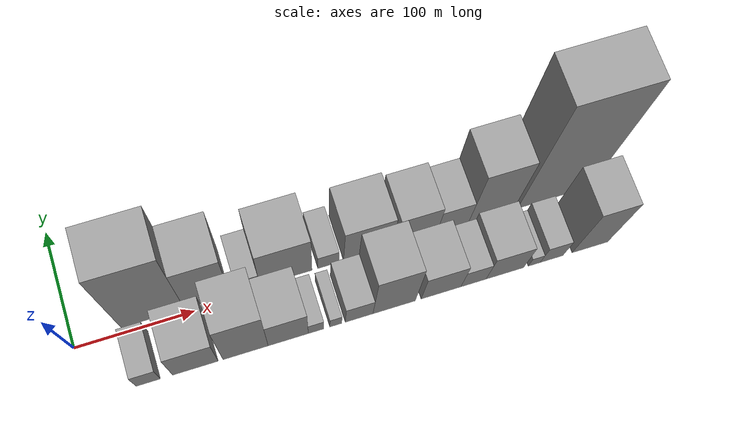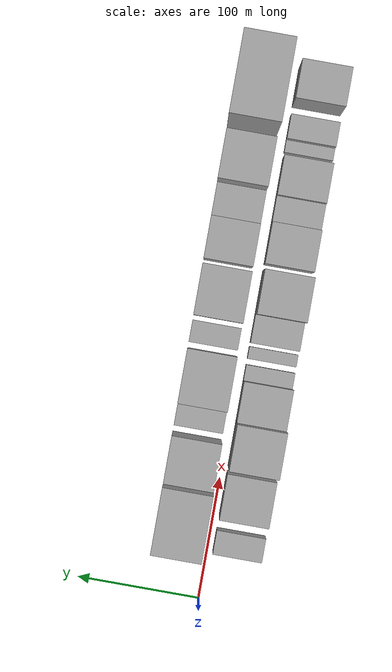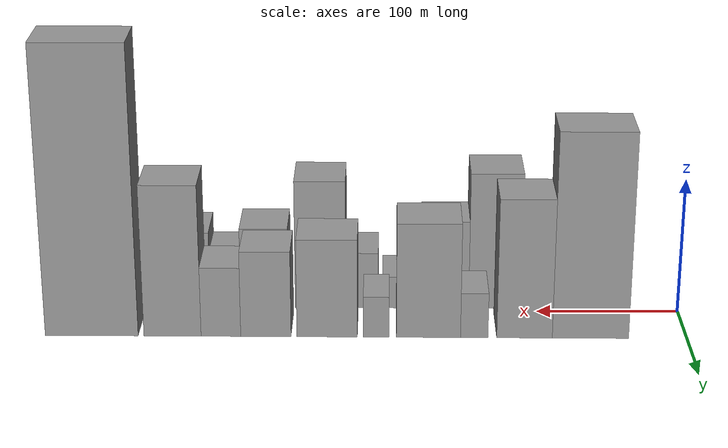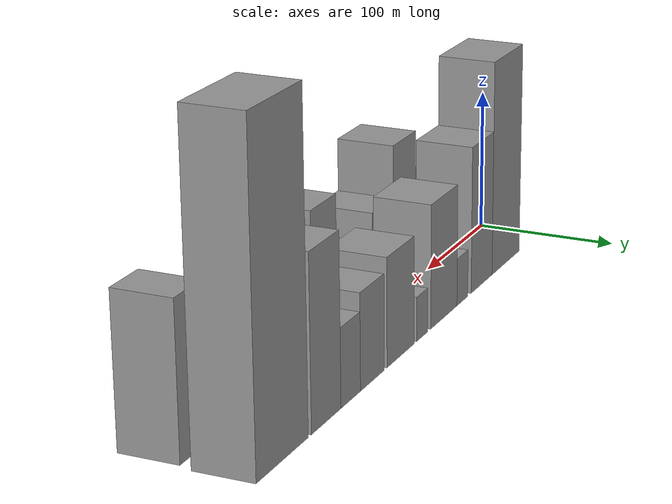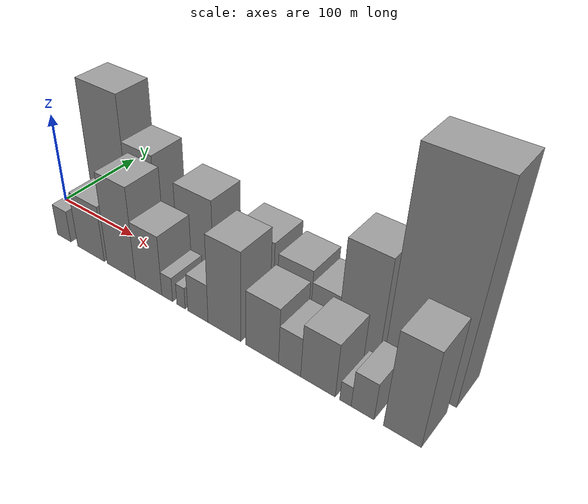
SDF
<sdf version="1.6">
 <world name="default">
  <scene>
   <sky><clouds><speed>12</speed></clouds></sky>
   <ambient>0.4 0.4 0.4 1</ambient>
   <background>0.7 0.7 0.7 1</background>
   <shadows>1</shadows>
  </scene>
  <gravity>0 0 -9.8066</gravity>
  <magnetic_field>6e-06 2.3e-05 -4.2e-05</magnetic_field>
  <physics default="0" name="default_physics" type="ode">
   <ode>
    <solver>
     <type>quick</type>
     <iters>10</iters>
     <sor>1.0</sor>
     <use_dynamic_moi_rescaling>0</use_dynamic_moi_rescaling>
    </solver>
    <constraints>
     <cfm>0</cfm>
     <erp>0.2</erp>
     <contact_max_correcting_vel>100</contact_max_correcting_vel>
     <contact_surface_layer>0.001</contact_surface_layer>
    </constraints>
   </ode>
   <max_step_size>0.004</max_step_size>
   <real_time_factor>1</real_time_factor>
   <real_time_update_rate>250</real_time_update_rate>
  </physics>
  <light name="sun" type="directional">
   <pose>0 0 10 0 0 0</pose>
   <diffuse>0.8 0.8 0.8 1</diffuse>
   <specular>0.2 0.2 0.2 1</specular>
   <attenuation>
    <range>1000</range>
    <constant>0.9</constant>
    <linear>0.01</linear>
    <quadratic>0.001</quadratic>
   </attenuation>
   <direction>-0.5 0.1 -0.9</direction>
  </light>
  <model name="building_1">
   <static>1</static>
   <pose>66.2491 24.5000 0 0.000000 0.000000 1.570796</pose>
   <link name="link">
    <pose>0 0 75.00 0 0 0</pose>
    <collision name="collision"><geometry><box><size>40.0000 52.4982 150.0000</size></box></geometry></collision>
    <visual name="visual">
     <cast_shadows>0</cast_shadows>
     <geometry><box><size>40.0000 52.4982 150.0000</size></box></geometry>
     <material>
      <script>
       <uri>model://grey_wall/materials/scripts</uri>
       <uri>model://grey_wall/materials/textures</uri>
       <name>vrc/grey_wall</name>
      </script>
     </material>
    </visual>
   </link>
  </model>
  <model name="building_2">
   <static>1</static>
   <pose>111.5867 24.5000 0 0.000000 0.000000 1.570796</pose>
   <link name="link">
    <pose>0 0 51.00 0 0 0</pose>
    <collision name="collision"><geometry><box><size>40.0000 38.1771 102.0000</size></box></geometry></collision>
    <visual name="visual">
     <cast_shadows>0</cast_shadows>
     <geometry><box><size>40.0000 38.1771 102.0000</size></box></geometry>
     <material>
      <script>
       <uri>model://grey_wall/materials/scripts</uri>
       <uri>model://grey_wall/materials/textures</uri>
       <name>vrc/grey_wall</name>
      </script>
     </material>
    </visual>
   </link>
  </model>
  <model name="building_3">
   <static>1</static>
   <pose>146.1484 24.5000 0 0.000000 0.000000 1.570796</pose>
   <link name="link">
    <pose>0 0 16.50 0 0 0</pose>
    <collision name="collision"><geometry><box><size>40.0000 18.9463 33.0000</size></box></geometry></collision>
    <visual name="visual">
     <cast_shadows>0</cast_shadows>
     <geometry><box><size>40.0000 18.9463 33.0000</size></box></geometry>
     <material>
      <script>
       <uri>model://grey_wall/materials/scripts</uri>
       <uri>model://grey_wall/materials/textures</uri>
       <name>vrc/grey_wall</name>
      </script>
     </material>
    </visual>
   </link>
  </model>
  <model name="building_4">
   <static>1</static>
   <pose>177.6803 24.5000 0 0.000000 0.000000 1.570796</pose>
   <link name="link">
    <pose>0 0 42.00 0 0 0</pose>
    <collision name="collision"><geometry><box><size>40.0000 44.1176 84.0000</size></box></geometry></collision>
    <visual name="visual">
     <cast_shadows>0</cast_shadows>
     <geometry><box><size>40.0000 44.1176 84.0000</size></box></geometry>
     <material>
      <script>
       <uri>model://grey_wall/materials/scripts</uri>
       <uri>model://grey_wall/materials/textures</uri>
       <name>vrc/grey_wall</name>
      </script>
     </material>
    </visual>
   </link>
  </model>
  <model name="building_5">
   <static>1</static>
   <pose>213.7011 24.5000 0 0.000000 0.000000 1.570796</pose>
   <link name="link">
    <pose>0 0 15.00 0 0 0</pose>
    <collision name="collision"><geometry><box><size>40.0000 17.9239 30.0000</size></box></geometry></collision>
    <visual name="visual">
     <cast_shadows>0</cast_shadows>
     <geometry><box><size>40.0000 17.9239 30.0000</size></box></geometry>
     <material>
      <script>
       <uri>model://grey_wall/materials/scripts</uri>
       <uri>model://grey_wall/materials/textures</uri>
       <name>vrc/grey_wall</name>
      </script>
     </material>
    </visual>
   </link>
  </model>
  <model name="building_6">
   <static>1</static>
   <pose>247.5219 24.5000 0 0.000000 0.000000 1.570796</pose>
   <link name="link">
    <pose>0 0 36.00 0 0 0</pose>
    <collision name="collision"><geometry><box><size>40.0000 41.7179 72.0000</size></box></geometry></collision>
    <visual name="visual">
     <cast_shadows>0</cast_shadows>
     <geometry><box><size>40.0000 41.7179 72.0000</size></box></geometry>
     <material>
      <script>
       <uri>model://grey_wall/materials/scripts</uri>
       <uri>model://grey_wall/materials/textures</uri>
       <name>vrc/grey_wall</name>
      </script>
     </material>
    </visual>
   </link>
  </model>
  <model name="building_7">
   <static>1</static>
   <pose>289.7407 24.5000 0 0.000000 0.000000 1.570796</pose>
   <link name="link">
    <pose>0 0 31.50 0 0 0</pose>
    <collision name="collision"><geometry><box><size>40.0000 34.7196 63.0000</size></box></geometry></collision>
    <visual name="visual">
     <cast_shadows>0</cast_shadows>
     <geometry><box><size>40.0000 34.7196 63.0000</size></box></geometry>
     <material>
      <script>
       <uri>model://grey_wall/materials/scripts</uri>
       <uri>model://grey_wall/materials/textures</uri>
       <name>vrc/grey_wall</name>
      </script>
     </material>
    </visual>
   </link>
  </model>
  <model name="building_8">
   <static>1</static>
   <pose>320.7834 24.5000 0 0.000000 0.000000 1.570796</pose>
   <link name="link">
    <pose>0 0 25.50 0 0 0</pose>
    <collision name="collision"><geometry><box><size>40.0000 27.3658 51.0000</size></box></geometry></collision>
    <visual name="visual">
     <cast_shadows>0</cast_shadows>
     <geometry><box><size>40.0000 27.3658 51.0000</size></box></geometry>
     <material>
      <script>
       <uri>model://grey_wall/materials/scripts</uri>
       <uri>model://grey_wall/materials/textures</uri>
       <name>vrc/grey_wall</name>
      </script>
     </material>
    </visual>
   </link>
  </model>
  <model name="building_9">
   <static>1</static>
   <pose>354.2003 24.5000 0 0.000000 0.000000 1.570796</pose>
   <link name="link">
    <pose>0 0 55.50 0 0 0</pose>
    <collision name="collision"><geometry><box><size>40.0000 39.4681 111.0000</size></box></geometry></collision>
    <visual name="visual">
     <cast_shadows>0</cast_shadows>
     <geometry><box><size>40.0000 39.4681 111.0000</size></box></geometry>
     <material>
      <script>
       <uri>model://grey_wall/materials/scripts</uri>
       <uri>model://grey_wall/materials/textures</uri>
       <name>vrc/grey_wall</name>
      </script>
     </material>
    </visual>
   </link>
  </model>
  <model name="building_10">
   <static>1</static>
   <pose>410.0367 24.5000 0 0.000000 0.000000 1.570796</pose>
   <link name="link">
    <pose>0 0 105.00 0 0 0</pose>
    <collision name="collision"><geometry><box><size>40.0000 64.2047 210.0000</size></box></geometry></collision>
    <visual name="visual">
     <cast_shadows>0</cast_shadows>
     <geometry><box><size>40.0000 64.2047 210.0000</size></box></geometry>
     <material>
      <script>
       <uri>model://grey_wall/materials/scripts</uri>
       <uri>model://grey_wall/materials/textures</uri>
       <name>vrc/grey_wall</name>
      </script>
     </material>
    </visual>
   </link>
  </model>
  <model name="building_11">
   <static>1</static>
   <pose>49.8401 -24.5000 0 0.000000 0.000000 1.570796</pose>
   <link name="link">
    <pose>0 0 18.00 0 0 0</pose>
    <collision name="collision"><geometry><box><size>40.0000 19.6802 36.0000</size></box></geometry></collision>
    <visual name="visual">
     <cast_shadows>0</cast_shadows>
     <geometry><box><size>40.0000 19.6802 36.0000</size></box></geometry>
     <material>
      <script>
       <uri>model://grey_wall/materials/scripts</uri>
       <uri>model://grey_wall/materials/textures</uri>
       <name>vrc/grey_wall</name>
      </script>
     </material>
    </visual>
   </link>
  </model>
  <model name="building_12">
   <static>1</static>
   <pose>88.3204 -24.5000 0 0.000000 0.000000 1.570796</pose>
   <link name="link">
    <pose>0 0 31.50 0 0 0</pose>
    <collision name="collision"><geometry><box><size>40.0000 37.2804 63.0000</size></box></geometry></collision>
    <visual name="visual">
     <cast_shadows>0</cast_shadows>
     <geometry><box><size>40.0000 37.2804 63.0000</size></box></geometry>
     <material>
      <script>
       <uri>model://grey_wall/materials/scripts</uri>
       <uri>model://grey_wall/materials/textures</uri>
       <name>vrc/grey_wall</name>
      </script>
     </material>
    </visual>
   </link>
  </model>
  <model name="building_13">
   <static>1</static>
   <pose>129.5694 -24.5000 0 0.000000 0.000000 1.570796</pose>
   <link name="link">
    <pose>0 0 51.00 0 0 0</pose>
    <collision name="collision"><geometry><box><size>40.0000 37.2177 102.0000</size></box></geometry></collision>
    <visual name="visual">
     <cast_shadows>0</cast_shadows>
     <geometry><box><size>40.0000 37.2177 102.0000</size></box></geometry>
     <material>
      <script>
       <uri>model://grey_wall/materials/scripts</uri>
       <uri>model://grey_wall/materials/textures</uri>
       <name>vrc/grey_wall</name>
      </script>
     </material>
    </visual>
   </link>
  </model>
  <model name="building_14">
   <static>1</static>
   <pose>164.8557 -24.5000 0 0.000000 0.000000 1.570796</pose>
   <link name="link">
    <pose>0 0 33.00 0 0 0</pose>
    <collision name="collision"><geometry><box><size>40.0000 33.3548 66.0000</size></box></geometry></collision>
    <visual name="visual">
     <cast_shadows>0</cast_shadows>
     <geometry><box><size>40.0000 33.3548 66.0000</size></box></geometry>
     <material>
      <script>
       <uri>model://grey_wall/materials/scripts</uri>
       <uri>model://grey_wall/materials/textures</uri>
       <name>vrc/grey_wall</name>
      </script>
     </material>
    </visual>
   </link>
  </model>
  <model name="building_15">
   <static>1</static>
   <pose>188.0762 -24.5000 0 0.000000 0.000000 1.570796</pose>
   <link name="link">
    <pose>0 0 13.50 0 0 0</pose>
    <collision name="collision"><geometry><box><size>40.0000 13.0862 27.0000</size></box></geometry></collision>
    <visual name="visual">
     <cast_shadows>0</cast_shadows>
     <geometry><box><size>40.0000 13.0862 27.0000</size></box></geometry>
     <material>
      <script>
       <uri>model://grey_wall/materials/scripts</uri>
       <uri>model://grey_wall/materials/textures</uri>
       <name>vrc/grey_wall</name>
      </script>
     </material>
    </visual>
   </link>
  </model>
  <model name="building_16">
   <static>1</static>
   <pose>204.5970 -24.5000 0 0.000000 0.000000 1.570796</pose>
   <link name="link">
    <pose>0 0 12.00 0 0 0</pose>
    <collision name="collision"><geometry><box><size>40.0000 9.9553 24.0000</size></box></geometry></collision>
    <visual name="visual">
     <cast_shadows>0</cast_shadows>
     <geometry><box><size>40.0000 9.9553 24.0000</size></box></geometry>
     <material>
      <script>
       <uri>model://grey_wall/materials/scripts</uri>
       <uri>model://grey_wall/materials/textures</uri>
       <name>vrc/grey_wall</name>
      </script>
     </material>
    </visual>
   </link>
  </model>
  <model name="building_17">
   <static>1</static>
   <pose>224.1870 -24.5000 0 0.000000 0.000000 1.570796</pose>
   <link name="link">
    <pose>0 0 21.00 0 0 0</pose>
    <collision name="collision"><geometry><box><size>40.0000 23.2249 42.0000</size></box></geometry></collision>
    <visual name="visual">
     <cast_shadows>0</cast_shadows>
     <geometry><box><size>40.0000 23.2249 42.0000</size></box></geometry>
     <material>
      <script>
       <uri>model://grey_wall/materials/scripts</uri>
       <uri>model://grey_wall/materials/textures</uri>
       <name>vrc/grey_wall</name>
      </script>
     </material>
    </visual>
   </link>
  </model>
  <model name="building_18">
   <static>1</static>
   <pose>253.7835 -24.5000 0 0.000000 0.000000 1.570796</pose>
   <link name="link">
    <pose>0 0 48.00 0 0 0</pose>
    <collision name="collision"><geometry><box><size>40.0000 35.9681 96.0000</size></box></geometry></collision>
    <visual name="visual">
     <cast_shadows>0</cast_shadows>
     <geometry><box><size>40.0000 35.9681 96.0000</size></box></geometry>
     <material>
      <script>
       <uri>model://grey_wall/materials/scripts</uri>
       <uri>model://grey_wall/materials/textures</uri>
       <name>vrc/grey_wall</name>
      </script>
     </material>
    </visual>
   </link>
  </model>
  <model name="building_19">
   <static>1</static>
   <pose>293.7410 -24.5000 0 0.000000 0.000000 1.570796</pose>
   <link name="link">
    <pose>0 0 30.00 0 0 0</pose>
    <collision name="collision"><geometry><box><size>40.0000 33.9470 60.0000</size></box></geometry></collision>
    <visual name="visual">
     <cast_shadows>0</cast_shadows>
     <geometry><box><size>40.0000 33.9470 60.0000</size></box></geometry>
     <material>
      <script>
       <uri>model://grey_wall/materials/scripts</uri>
       <uri>model://grey_wall/materials/textures</uri>
       <name>vrc/grey_wall</name>
      </script>
     </material>
    </visual>
   </link>
  </model>
  <model name="building_20">
   <static>1</static>
   <pose>321.5718 -24.5000 0 0.000000 0.000000 1.570796</pose>
   <link name="link">
    <pose>0 0 21.00 0 0 0</pose>
    <collision name="collision"><geometry><box><size>40.0000 21.7144 42.0000</size></box></geometry></collision>
    <visual name="visual">
     <cast_shadows>0</cast_shadows>
     <geometry><box><size>40.0000 21.7144 42.0000</size></box></geometry>
     <material>
      <script>
       <uri>model://grey_wall/materials/scripts</uri>
       <uri>model://grey_wall/materials/textures</uri>
       <name>vrc/grey_wall</name>
      </script>
     </material>
    </visual>
   </link>
  </model>
  <model name="building_21">
   <static>1</static>
   <pose>348.6904 -24.5000 0 0.000000 0.000000 1.570796</pose>
   <link name="link">
    <pose>0 0 28.50 0 0 0</pose>
    <collision name="collision"><geometry><box><size>40.0000 32.5229 57.0000</size></box></geometry></collision>
    <visual name="visual">
     <cast_shadows>0</cast_shadows>
     <geometry><box><size>40.0000 32.5229 57.0000</size></box></geometry>
     <material>
      <script>
       <uri>model://grey_wall/materials/scripts</uri>
       <uri>model://grey_wall/materials/textures</uri>
       <name>vrc/grey_wall</name>
      </script>
     </material>
    </visual>
   </link>
  </model>
  <model name="building_22">
   <static>1</static>
   <pose>374.0965 -24.5000 0 0.000000 0.000000 1.570796</pose>
   <link name="link">
    <pose>0 0 10.50 0 0 0</pose>
    <collision name="collision"><geometry><box><size>40.0000 10.2892 21.0000</size></box></geometry></collision>
    <visual name="visual">
     <cast_shadows>0</cast_shadows>
     <geometry><box><size>40.0000 10.2892 21.0000</size></box></geometry>
     <material>
      <script>
       <uri>model://grey_wall/materials/scripts</uri>
       <uri>model://grey_wall/materials/textures</uri>
       <name>vrc/grey_wall</name>
      </script>
     </material>
    </visual>
   </link>
  </model>
  <model name="building_23">
   <static>1</static>
   <pose>389.2491 -24.5000 0 0.000000 0.000000 1.570796</pose>
   <link name="link">
    <pose>0 0 19.50 0 0 0</pose>
    <collision name="collision"><geometry><box><size>40.0000 20.0160 39.0000</size></box></geometry></collision>
    <visual name="visual">
     <cast_shadows>0</cast_shadows>
     <geometry><box><size>40.0000 20.0160 39.0000</size></box></geometry>
     <material>
      <script>
       <uri>model://grey_wall/materials/scripts</uri>
       <uri>model://grey_wall/materials/textures</uri>
       <name>vrc/grey_wall</name>
      </script>
     </material>
    </visual>
   </link>
  </model>
  <model name="building_24">
   <static>1</static>
   <pose>422.8997 -24.5000 0 0.000000 0.000000 1.570796</pose>
   <link name="link">
    <pose>0 0 49.50 0 0 0</pose>
    <collision name="collision"><geometry><box><size>40.0000 31.2851 99.0000</size></box></geometry></collision>
    <visual name="visual">
     <cast_shadows>0</cast_shadows>
     <geometry><box><size>40.0000 31.2851 99.0000</size></box></geometry>
     <material>
      <script>
       <uri>model://grey_wall/materials/scripts</uri>
       <uri>model://grey_wall/materials/textures</uri>
       <name>vrc/grey_wall</name>
      </script>
     </material>
    </visual>
   </link>
  </model>
 </world>
</sdf>
